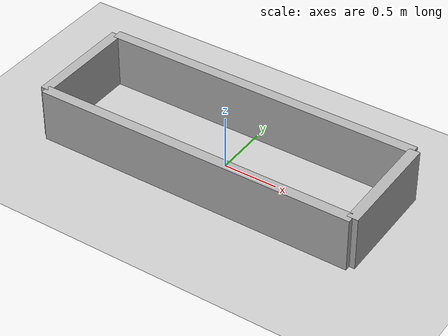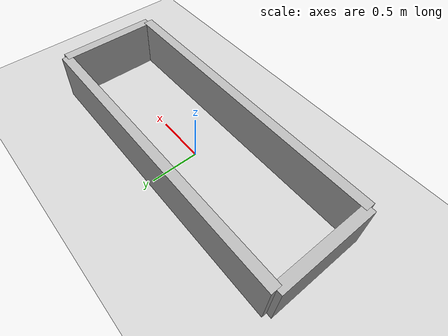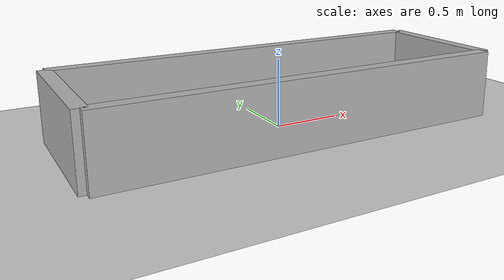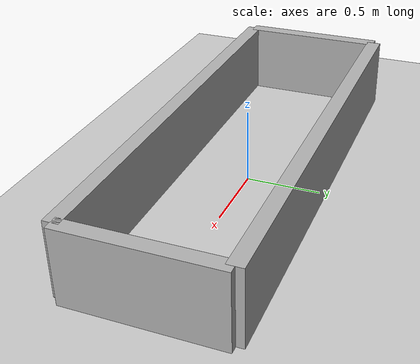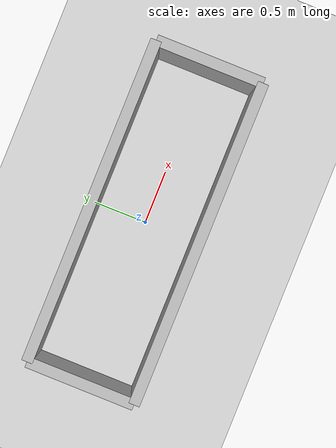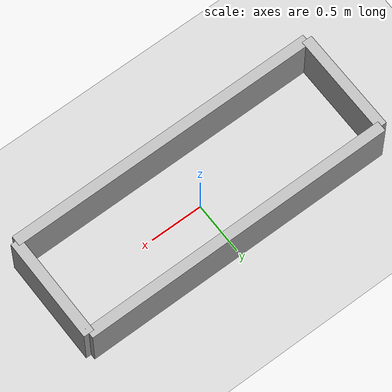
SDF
<?xml version="1.0" ?>

<sdf version="1.6">

  <world name="corridor_world">

    <!-- Configurações de física do mundo -->

    <!-- Luz -->
    <include>
      <uri>model://sun</uri>
    </include>

    <!-- Plano de chão -->
    <include>
      <uri>model://ground_plane</uri>
    </include>

    <!-- Paredes do corredor -->
    <model name="wall_1">
      <pose>0 -0.5 0.25 0 0 0</pose> <!-- Centralizada no eixo Y e na posição -0.5m -->
      <static>true</static>
      <link name="link">
        <collision name="collision">
          <geometry>
            <box>
              <size>3 0.1 0.5</size> <!-- Comprimento 3m, largura 0.1m, altura 0.5m -->
            </box>
          </geometry>
        </collision>
        <visual name="visual">
          <geometry>
            <box>
              <size>3 0.1 0.5</size>
            </box>
          </geometry>
          <material>
            <ambient>0.7 0.7 0.7 1</ambient>
          </material>
        </visual>
      </link>
    </model>

    <model name="wall_2">
      <pose>0 0.5 0.25 0 0 0</pose> <!-- Centralizada no eixo Y e na posição 0.5m -->
      <static>true</static>
      <link name="link">
        <collision name="collision">
          <geometry>
            <box>
              <size>3 0.1 0.5</size>
            </box>
          </geometry>
        </collision>
        <visual name="visual">
          <geometry>
            <box>
              <size>3 0.1 0.5</size>
            </box>
          </geometry>
          <material>
            <ambient>0.7 0.7 0.7 1</ambient>
          </material>
        </visual>
      </link>
    </model>

    <model name="wall_3">
      <pose>1.5 0 0.25 0 0 1.5708</pose> <!-- Rotacionada em 90 graus para formar a parede direita -->
      <static>true</static>
      <link name="link">
        <collision name="collision">
          <geometry>
            <box>
              <size>1 0.1 0.5</size> <!-- Comprimento 1m, largura 0.1m, altura 0.5m -->
            </box>
          </geometry>
        </collision>
        <visual name="visual">
          <geometry>
            <box>
              <size>1 0.1 0.5</size>
            </box>
          </geometry>
          <material>
            <ambient>0.7 0.7 0.7 1</ambient>
          </material>
        </visual>
      </link>
    </model>

    <model name="wall_4">
      <pose>-1.5 0 0.25 0 0 1.5708</pose> <!-- Rotacionada em 90 graus para formar a parede esquerda -->
      <static>true</static>
      <link name="link">
        <collision name="collision">
          <geometry>
            <box>
              <size>1 0.1 0.5</size> <!-- Comprimento 1m, largura 0.1m, altura 0.5m -->
            </box>
          </geometry>
        </collision>
        <visual name="visual">
          <geometry>
            <box>
              <size>1 0.1 0.5</size>
            </box>
          </geometry>
          <material>
            <ambient>0.7 0.7 0.7 1</ambient>
          </material>
        </visual>
      </link>
    </model>

  </world>

</sdf>
